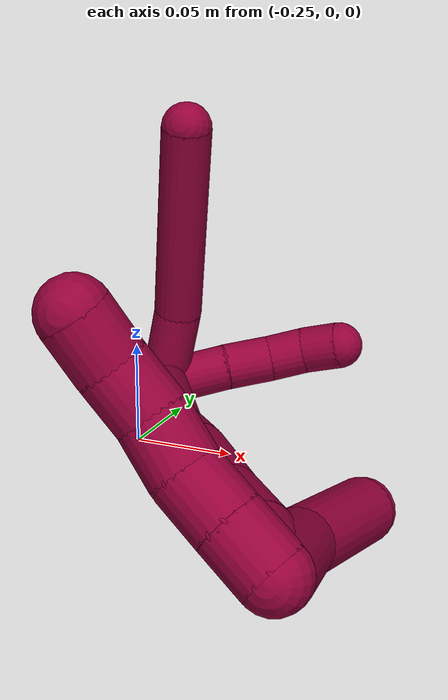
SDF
<sdf version="1.7">
 <world name="default">
  <model name="8">
   <static>0</static>
   <link name="8">
    <collision name="collision-cylinder-e_1_2_8">
     <pose>-0.001926 0.020821 0.0079 -1.20815 -0.086254 0.059547</pose>
     <geometry><cylinder><radius>0.0125</radius><length>0.044704</length></cylinder></geometry>
     <surface>
      <friction><ode><mu>1.16</mu><mu2>1.16</mu2><slip1>0</slip1><slip2>0</slip2></ode></friction>
      <contact><ode><kp>1e+06</kp><kd>1</kd><max_vel>0</max_vel><min_depth>0.001</min_depth></ode></contact>
     </surface>
    </collision>
    <visual name="visual-cylinder-e_1_2_8">
     <pose>-0.001926 0.020821 0.0079 -1.20815 -0.086254 0.059547</pose>
     <geometry><cylinder><radius>0.0125</radius><length>0.044704</length></cylinder></geometry>
     <material><ambient>0.584314 0 0.227451 1</ambient></material>
    </visual>
    <collision name="collision-cylinder-e_2_8_6">
     <pose>-0.012451 0.086892 0.041299 -1.05765 -0.164077 0.096019</pose>
     <geometry><cylinder><radius>0.0125</radius><length>0.105296</length></cylinder></geometry>
     <surface>
      <friction><ode><mu>1.16</mu><mu2>1.16</mu2><slip1>0</slip1><slip2>0</slip2></ode></friction>
      <contact><ode><kp>1e+06</kp><kd>1</kd><max_vel>0</max_vel><min_depth>0.001</min_depth></ode></contact>
     </surface>
    </collision>
    <visual name="visual-cylinder-e_2_8_6">
     <pose>-0.012451 0.086892 0.041299 -1.05765 -0.164077 0.096019</pose>
     <geometry><cylinder><radius>0.0125</radius><length>0.105296</length></cylinder></geometry>
     <material><ambient>0.584314 0 0.227451 1</ambient></material>
    </visual>
    <collision name="collision-cylinder-e_1_2_9">
     <pose>0.013409 0.010136 -0.005414 -2.06137 0.862256 -1.30881</pose>
     <geometry><cylinder><radius>0.0125</radius><length>0.03532</length></cylinder></geometry>
     <surface>
      <friction><ode><mu>1.16</mu><mu2>1.16</mu2><slip1>0</slip1><slip2>0</slip2></ode></friction>
      <contact><ode><kp>1e+06</kp><kd>1</kd><max_vel>0</max_vel><min_depth>0.001</min_depth></ode></contact>
     </surface>
    </collision>
    <visual name="visual-cylinder-e_1_2_9">
     <pose>0.013409 0.010136 -0.005414 -2.06137 0.862256 -1.30881</pose>
     <geometry><cylinder><radius>0.0125</radius><length>0.03532</length></cylinder></geometry>
     <material><ambient>0.584314 0 0.227451 1</ambient></material>
    </visual>
    <collision name="collision-cylinder-e_2_9_10">
     <pose>0.036364 0.026708 -0.015235 -2.17128 0.885713 -1.46523</pose>
     <geometry><cylinder><radius>0.0125</radius><length>0.024654</length></cylinder></geometry>
     <surface>
      <friction><ode><mu>1.16</mu><mu2>1.16</mu2><slip1>0</slip1><slip2>0</slip2></ode></friction>
      <contact><ode><kp>1e+06</kp><kd>1</kd><max_vel>0</max_vel><min_depth>0.001</min_depth></ode></contact>
     </surface>
    </collision>
    <visual name="visual-cylinder-e_2_9_10">
     <pose>0.036364 0.026708 -0.015235 -2.17128 0.885713 -1.46523</pose>
     <geometry><cylinder><radius>0.0125</radius><length>0.024654</length></cylinder></geometry>
     <material><ambient>0.584314 0 0.227451 1</ambient></material>
    </visual>
    <collision name="collision-cylinder-e_3_10_11">
     <pose>0.053798 0.039011 -0.021481 -1.87442 0.908685 -1.17351</pose>
     <geometry><cylinder><radius>0.0125</radius><length>0.020003</length></cylinder></geometry>
     <surface>
      <friction><ode><mu>1.16</mu><mu2>1.16</mu2><slip1>0</slip1><slip2>0</slip2></ode></friction>
      <contact><ode><kp>1e+06</kp><kd>1</kd><max_vel>0</max_vel><min_depth>0.001</min_depth></ode></contact>
     </surface>
    </collision>
    <visual name="visual-cylinder-e_3_10_11">
     <pose>0.053798 0.039011 -0.021481 -1.87442 0.908685 -1.17351</pose>
     <geometry><cylinder><radius>0.0125</radius><length>0.020003</length></cylinder></geometry>
     <material><ambient>0.584314 0 0.227451 1</ambient></material>
    </visual>
    <collision name="collision-cylinder-e_4_11_5">
     <pose>0.070119 0.050141 -0.022119 -1.34656 1.00144 -0.823117</pose>
     <geometry><cylinder><radius>0.0125</radius><length>0.020023</length></cylinder></geometry>
     <surface>
      <friction><ode><mu>1.16</mu><mu2>1.16</mu2><slip1>0</slip1><slip2>0</slip2></ode></friction>
      <contact><ode><kp>1e+06</kp><kd>1</kd><max_vel>0</max_vel><min_depth>0.001</min_depth></ode></contact>
     </surface>
    </collision>
    <visual name="visual-cylinder-e_4_11_5">
     <pose>0.070119 0.050141 -0.022119 -1.34656 1.00144 -0.823117</pose>
     <geometry><cylinder><radius>0.0125</radius><length>0.020023</length></cylinder></geometry>
     <material><ambient>0.584314 0 0.227451 1</ambient></material>
    </visual>
    <collision name="collision-cylinder-e_1_2_12">
     <pose>0.020731 0.003293 0.058264 -0.056454 0.341343 -0.009732</pose>
     <geometry><cylinder><radius>0.0125</radius><length>0.12386</length></cylinder></geometry>
     <surface>
      <friction><ode><mu>1.16</mu><mu2>1.16</mu2><slip1>0</slip1><slip2>0</slip2></ode></friction>
      <contact><ode><kp>1e+06</kp><kd>1</kd><max_vel>0</max_vel><min_depth>0.001</min_depth></ode></contact>
     </surface>
    </collision>
    <visual name="visual-cylinder-e_1_2_12">
     <pose>0.020731 0.003293 0.058264 -0.056454 0.341343 -0.009732</pose>
     <geometry><cylinder><radius>0.0125</radius><length>0.12386</length></cylinder></geometry>
     <material><ambient>0.584314 0 0.227451 1</ambient></material>
    </visual>
    <collision name="collision-cylinder-e_2_12_13">
     <pose>0.052738 0.010341 0.142619 -0.142941 0.404188 -0.029335</pose>
     <geometry><cylinder><radius>0.0125</radius><length>0.057341</length></cylinder></geometry>
     <surface>
      <friction><ode><mu>1.16</mu><mu2>1.16</mu2><slip1>0</slip1><slip2>0</slip2></ode></friction>
      <contact><ode><kp>1e+06</kp><kd>1</kd><max_vel>0</max_vel><min_depth>0.001</min_depth></ode></contact>
     </surface>
    </collision>
    <visual name="visual-cylinder-e_2_12_13">
     <pose>0.052738 0.010341 0.142619 -0.142941 0.404188 -0.029335</pose>
     <geometry><cylinder><radius>0.0125</radius><length>0.057341</length></cylinder></geometry>
     <material><ambient>0.584314 0 0.227451 1</ambient></material>
    </visual>
    <collision name="collision-cylinder-e_3_13_14">
     <pose>0.076552 0.015021 0.192136 -0.039471 0.491135 -0.009894</pose>
     <geometry><cylinder><radius>0.0125</radius><length>0.053172</length></cylinder></geometry>
     <surface>
      <friction><ode><mu>1.16</mu><mu2>1.16</mu2><slip1>0</slip1><slip2>0</slip2></ode></friction>
      <contact><ode><kp>1e+06</kp><kd>1</kd><max_vel>0</max_vel><min_depth>0.001</min_depth></ode></contact>
     </surface>
    </collision>
    <visual name="visual-cylinder-e_3_13_14">
     <pose>0.076552 0.015021 0.192136 -0.039471 0.491135 -0.009894</pose>
     <geometry><cylinder><radius>0.0125</radius><length>0.053172</length></cylinder></geometry>
     <material><ambient>0.584314 0 0.227451 1</ambient></material>
    </visual>
    <collision name="collision-cylinder-e_4_14_15">
     <pose>0.098438 0.016663 0.230684 -0.047379 0.55315 -0.013451</pose>
     <geometry><cylinder><radius>0.0125</radius><length>0.035587</length></cylinder></geometry>
     <surface>
      <friction><ode><mu>1.16</mu><mu2>1.16</mu2><slip1>0</slip1><slip2>0</slip2></ode></friction>
      <contact><ode><kp>1e+06</kp><kd>1</kd><max_vel>0</max_vel><min_depth>0.001</min_depth></ode></contact>
     </surface>
    </collision>
    <visual name="visual-cylinder-e_4_14_15">
     <pose>0.098438 0.016663 0.230684 -0.047379 0.55315 -0.013451</pose>
     <geometry><cylinder><radius>0.0125</radius><length>0.035587</length></cylinder></geometry>
     <material><ambient>0.584314 0 0.227451 1</ambient></material>
    </visual>
    <collision name="collision-cylinder-e_5_15_1">
     <pose>0.113425 0.017281 0.259729 0.007143 0.384803 0.001392</pose>
     <geometry><cylinder><radius>0.0125</radius><length>0.03004</length></cylinder></geometry>
     <surface>
      <friction><ode><mu>1.16</mu><mu2>1.16</mu2><slip1>0</slip1><slip2>0</slip2></ode></friction>
      <contact><ode><kp>1e+06</kp><kd>1</kd><max_vel>0</max_vel><min_depth>0.001</min_depth></ode></contact>
     </surface>
    </collision>
    <visual name="visual-cylinder-e_5_15_1">
     <pose>0.113425 0.017281 0.259729 0.007143 0.384803 0.001392</pose>
     <geometry><cylinder><radius>0.0125</radius><length>0.03004</length></cylinder></geometry>
     <material><ambient>0.584314 0 0.227451 1</ambient></material>
    </visual>
    <collision name="collision-cylinder-e_1_1_16">
     <pose>0.10983 0.020866 0.272566 -1.85702 -1.1766 1.45644</pose>
     <geometry><cylinder><radius>0.0125</radius><length>0.02</length></cylinder></geometry>
     <surface>
      <friction><ode><mu>1.16</mu><mu2>1.16</mu2><slip1>0</slip1><slip2>0</slip2></ode></friction>
      <contact><ode><kp>1e+06</kp><kd>1</kd><max_vel>0</max_vel><min_depth>0.001</min_depth></ode></contact>
     </surface>
    </collision>
    <visual name="visual-cylinder-e_1_1_16">
     <pose>0.10983 0.020866 0.272566 -1.85702 -1.1766 1.45644</pose>
     <geometry><cylinder><radius>0.0125</radius><length>0.02</length></cylinder></geometry>
     <material><ambient>0.584314 0 0.227451 1</ambient></material>
    </visual>
    <collision name="collision-cylinder-e_2_16_17">
     <pose>0.09141 0.0283 0.270245 -1.88937 -1.16486 1.47747</pose>
     <geometry><cylinder><radius>0.0125</radius><length>0.02</length></cylinder></geometry>
     <surface>
      <friction><ode><mu>1.16</mu><mu2>1.16</mu2><slip1>0</slip1><slip2>0</slip2></ode></friction>
      <contact><ode><kp>1e+06</kp><kd>1</kd><max_vel>0</max_vel><min_depth>0.001</min_depth></ode></contact>
     </surface>
    </collision>
    <visual name="visual-cylinder-e_2_16_17">
     <pose>0.09141 0.0283 0.270245 -1.88937 -1.16486 1.47747</pose>
     <geometry><cylinder><radius>0.0125</radius><length>0.02</length></cylinder></geometry>
     <material><ambient>0.584314 0 0.227451 1</ambient></material>
    </visual>
    <collision name="collision-cylinder-e_3_17_18">
     <pose>0.073989 0.037715 0.268652 -1.63344 -0.967177 1.01969</pose>
     <geometry><cylinder><radius>0.0125</radius><length>0.02</length></cylinder></geometry>
     <surface>
      <friction><ode><mu>1.16</mu><mu2>1.16</mu2><slip1>0</slip1><slip2>0</slip2></ode></friction>
      <contact><ode><kp>1e+06</kp><kd>1</kd><max_vel>0</max_vel><min_depth>0.001</min_depth></ode></contact>
     </surface>
    </collision>
    <visual name="visual-cylinder-e_3_17_18">
     <pose>0.073989 0.037715 0.268652 -1.63344 -0.967177 1.01969</pose>
     <geometry><cylinder><radius>0.0125</radius><length>0.02</length></cylinder></geometry>
     <material><ambient>0.584314 0 0.227451 1</ambient></material>
    </visual>
    <collision name="collision-cylinder-e_4_18_19">
     <pose>0.057243 0.048297 0.270128 -1.21434 -1.01856 0.740128</pose>
     <geometry><cylinder><radius>0.0125</radius><length>0.02</length></cylinder></geometry>
     <surface>
      <friction><ode><mu>1.16</mu><mu2>1.16</mu2><slip1>0</slip1><slip2>0</slip2></ode></friction>
      <contact><ode><kp>1e+06</kp><kd>1</kd><max_vel>0</max_vel><min_depth>0.001</min_depth></ode></contact>
     </surface>
    </collision>
    <visual name="visual-cylinder-e_4_18_19">
     <pose>0.057243 0.048297 0.270128 -1.21434 -1.01856 0.740128</pose>
     <geometry><cylinder><radius>0.0125</radius><length>0.02</length></cylinder></geometry>
     <material><ambient>0.584314 0 0.227451 1</ambient></material>
    </visual>
    <collision name="collision-cylinder-e_5_19_4">
     <pose>0.041285 0.058833 0.275564 -1.0004 -0.839651 0.478584</pose>
     <geometry><cylinder><radius>0.0125</radius><length>0.02</length></cylinder></geometry>
     <surface>
      <friction><ode><mu>1.16</mu><mu2>1.16</mu2><slip1>0</slip1><slip2>0</slip2></ode></friction>
      <contact><ode><kp>1e+06</kp><kd>1</kd><max_vel>0</max_vel><min_depth>0.001</min_depth></ode></contact>
     </surface>
    </collision>
    <visual name="visual-cylinder-e_5_19_4">
     <pose>0.041285 0.058833 0.275564 -1.0004 -0.839651 0.478584</pose>
     <geometry><cylinder><radius>0.0125</radius><length>0.02</length></cylinder></geometry>
     <material><ambient>0.584314 0 0.227451 1</ambient></material>
    </visual>
    <collision name="collision-cylinder-e_1_1_20">
     <pose>0.118904 0.016284 0.250056 3.10358 -0.006738 -0.350826</pose>
     <geometry><cylinder><radius>0.0125</radius><length>0.047223</length></cylinder></geometry>
     <surface>
      <friction><ode><mu>1.16</mu><mu2>1.16</mu2><slip1>0</slip1><slip2>0</slip2></ode></friction>
      <contact><ode><kp>1e+06</kp><kd>1</kd><max_vel>0</max_vel><min_depth>0.001</min_depth></ode></contact>
     </surface>
    </collision>
    <visual name="visual-cylinder-e_1_1_20">
     <pose>0.118904 0.016284 0.250056 3.10358 -0.006738 -0.350826</pose>
     <geometry><cylinder><radius>0.0125</radius><length>0.047223</length></cylinder></geometry>
     <material><ambient>0.584314 0 0.227451 1</ambient></material>
    </visual>
    <collision name="collision-cylinder-e_2_20_3">
     <pose>0.125153 0.01925 0.201157 -2.99009 0.245295 -2.0378</pose>
     <geometry><cylinder><radius>0.0125</radius><length>0.052777</length></cylinder></geometry>
     <surface>
      <friction><ode><mu>1.16</mu><mu2>1.16</mu2><slip1>0</slip1><slip2>0</slip2></ode></friction>
      <contact><ode><kp>1e+06</kp><kd>1</kd><max_vel>0</max_vel><min_depth>0.001</min_depth></ode></contact>
     </surface>
    </collision>
    <visual name="visual-cylinder-e_2_20_3">
     <pose>0.125153 0.01925 0.201157 -2.99009 0.245295 -2.0378</pose>
     <geometry><cylinder><radius>0.0125</radius><length>0.052777</length></cylinder></geometry>
     <material><ambient>0.584314 0 0.227451 1</ambient></material>
    </visual>
    <collision name="collision-sphere-3">
     <pose>0.131562 0.023114 0.175852 0 -0 0</pose>
     <geometry><sphere><radius>0.0125</radius></sphere></geometry>
     <surface>
      <friction><ode><mu>1.16</mu><mu2>1.16</mu2><slip1>0</slip1><slip2>0</slip2></ode></friction>
      <contact><ode><kp>1e+06</kp><kd>1</kd><max_vel>0</max_vel><min_depth>0.001</min_depth></ode></contact>
     </surface>
    </collision>
    <visual name="visual-sphere-3">
     <pose>0.131562 0.023114 0.175852 0 -0 0</pose>
     <geometry><sphere><radius>0.0125</radius></sphere></geometry>
     <material><ambient>0.584314 0 0.227451 1</ambient></material>
    </visual>
    <collision name="collision-sphere-20">
     <pose>0.118745 0.015387 0.226463 0 -0 0</pose>
     <geometry><sphere><radius>0.0125</radius></sphere></geometry>
     <surface>
      <friction><ode><mu>1.16</mu><mu2>1.16</mu2><slip1>0</slip1><slip2>0</slip2></ode></friction>
      <contact><ode><kp>1e+06</kp><kd>1</kd><max_vel>0</max_vel><min_depth>0.001</min_depth></ode></contact>
     </surface>
    </collision>
    <visual name="visual-sphere-20">
     <pose>0.118745 0.015387 0.226463 0 -0 0</pose>
     <geometry><sphere><radius>0.0125</radius></sphere></geometry>
     <material><ambient>0.584314 0 0.227451 1</ambient></material>
    </visual>
    <collision name="collision-sphere-4">
     <pose>0.033841 0.064453 0.279169 0 -0 0</pose>
     <geometry><sphere><radius>0.0125</radius></sphere></geometry>
     <surface>
      <friction><ode><mu>1.16</mu><mu2>1.16</mu2><slip1>0</slip1><slip2>0</slip2></ode></friction>
      <contact><ode><kp>1e+06</kp><kd>1</kd><max_vel>0</max_vel><min_depth>0.001</min_depth></ode></contact>
     </surface>
    </collision>
    <visual name="visual-sphere-4">
     <pose>0.033841 0.064453 0.279169 0 -0 0</pose>
     <geometry><sphere><radius>0.0125</radius></sphere></geometry>
     <material><ambient>0.584314 0 0.227451 1</ambient></material>
    </visual>
    <collision name="collision-sphere-11">
     <pose>0.061687 0.044879 -0.023319 0 -0 0</pose>
     <geometry><sphere><radius>0.0125</radius></sphere></geometry>
     <surface>
      <friction><ode><mu>1.16</mu><mu2>1.16</mu2><slip1>0</slip1><slip2>0</slip2></ode></friction>
      <contact><ode><kp>1e+06</kp><kd>1</kd><max_vel>0</max_vel><min_depth>0.001</min_depth></ode></contact>
     </surface>
    </collision>
    <visual name="visual-sphere-11">
     <pose>0.061687 0.044879 -0.023319 0 -0 0</pose>
     <geometry><sphere><radius>0.0125</radius></sphere></geometry>
     <material><ambient>0.584314 0 0.227451 1</ambient></material>
    </visual>
    <collision name="collision-sphere-10">
     <pose>0.04591 0.033144 -0.019643 0 -0 0</pose>
     <geometry><sphere><radius>0.0125</radius></sphere></geometry>
     <surface>
      <friction><ode><mu>1.16</mu><mu2>1.16</mu2><slip1>0</slip1><slip2>0</slip2></ode></friction>
      <contact><ode><kp>1e+06</kp><kd>1</kd><max_vel>0</max_vel><min_depth>0.001</min_depth></ode></contact>
     </surface>
    </collision>
    <visual name="visual-sphere-10">
     <pose>0.04591 0.033144 -0.019643 0 -0 0</pose>
     <geometry><sphere><radius>0.0125</radius></sphere></geometry>
     <material><ambient>0.584314 0 0.227451 1</ambient></material>
    </visual>
    <collision name="collision-sphere-6">
     <pose>-0.02105 0.132144 0.066797 0 -0 0</pose>
     <geometry><sphere><radius>0.0125</radius></sphere></geometry>
     <surface>
      <friction><ode><mu>1.16</mu><mu2>1.16</mu2><slip1>0</slip1><slip2>0</slip2></ode></friction>
      <contact><ode><kp>1e+06</kp><kd>1</kd><max_vel>0</max_vel><min_depth>0.001</min_depth></ode></contact>
     </surface>
    </collision>
    <visual name="visual-sphere-6">
     <pose>-0.02105 0.132144 0.066797 0 -0 0</pose>
     <geometry><sphere><radius>0.0125</radius></sphere></geometry>
     <material><ambient>0.584314 0 0.227451 1</ambient></material>
    </visual>
    <collision name="collision-sphere-9">
     <pose>0.026819 0.020273 -0.010828 0 -0 0</pose>
     <geometry><sphere><radius>0.0125</radius></sphere></geometry>
     <surface>
      <friction><ode><mu>1.16</mu><mu2>1.16</mu2><slip1>0</slip1><slip2>0</slip2></ode></friction>
      <contact><ode><kp>1e+06</kp><kd>1</kd><max_vel>0</max_vel><min_depth>0.001</min_depth></ode></contact>
     </surface>
    </collision>
    <visual name="visual-sphere-9">
     <pose>0.026819 0.020273 -0.010828 0 -0 0</pose>
     <geometry><sphere><radius>0.0125</radius></sphere></geometry>
     <material><ambient>0.584314 0 0.227451 1</ambient></material>
    </visual>
    <collision name="collision-sphere-2">
     <geometry><sphere><radius>0.0125</radius></sphere></geometry>
     <surface>
      <friction><ode><mu>1.16</mu><mu2>1.16</mu2><slip1>0</slip1><slip2>0</slip2></ode></friction>
      <contact><ode><kp>1e+06</kp><kd>1</kd><max_vel>0</max_vel><min_depth>0.001</min_depth></ode></contact>
     </surface>
    </collision>
    <visual name="visual-sphere-2">
     <geometry><sphere><radius>0.0125</radius></sphere></geometry>
     <material><ambient>0.584314 0 0.227451 1</ambient></material>
    </visual>
    <collision name="collision-sphere-19">
     <pose>0.04873 0.053213 0.271958 0 -0 0</pose>
     <geometry><sphere><radius>0.0125</radius></sphere></geometry>
     <surface>
      <friction><ode><mu>1.16</mu><mu2>1.16</mu2><slip1>0</slip1><slip2>0</slip2></ode></friction>
      <contact><ode><kp>1e+06</kp><kd>1</kd><max_vel>0</max_vel><min_depth>0.001</min_depth></ode></contact>
     </surface>
    </collision>
    <visual name="visual-sphere-19">
     <pose>0.04873 0.053213 0.271958 0 -0 0</pose>
     <geometry><sphere><radius>0.0125</radius></sphere></geometry>
     <material><ambient>0.584314 0 0.227451 1</ambient></material>
    </visual>
    <collision name="collision-sphere-8">
     <pose>-0.003851 0.041641 0.0158 0 -0 0</pose>
     <geometry><sphere><radius>0.0125</radius></sphere></geometry>
     <surface>
      <friction><ode><mu>1.16</mu><mu2>1.16</mu2><slip1>0</slip1><slip2>0</slip2></ode></friction>
      <contact><ode><kp>1e+06</kp><kd>1</kd><max_vel>0</max_vel><min_depth>0.001</min_depth></ode></contact>
     </surface>
    </collision>
    <visual name="visual-sphere-8">
     <pose>-0.003851 0.041641 0.0158 0 -0 0</pose>
     <geometry><sphere><radius>0.0125</radius></sphere></geometry>
     <material><ambient>0.584314 0 0.227451 1</ambient></material>
    </visual>
    <collision name="collision-sphere-5">
     <pose>0.078551 0.055403 -0.020919 0 -0 0</pose>
     <geometry><sphere><radius>0.0125</radius></sphere></geometry>
     <surface>
      <friction><ode><mu>1.16</mu><mu2>1.16</mu2><slip1>0</slip1><slip2>0</slip2></ode></friction>
      <contact><ode><kp>1e+06</kp><kd>1</kd><max_vel>0</max_vel><min_depth>0.001</min_depth></ode></contact>
     </surface>
    </collision>
    <visual name="visual-sphere-5">
     <pose>0.078551 0.055403 -0.020919 0 -0 0</pose>
     <geometry><sphere><radius>0.0125</radius></sphere></geometry>
     <material><ambient>0.584314 0 0.227451 1</ambient></material>
    </visual>
    <collision name="collision-sphere-12">
     <pose>0.041463 0.006586 0.116528 0 -0 0</pose>
     <geometry><sphere><radius>0.0125</radius></sphere></geometry>
     <surface>
      <friction><ode><mu>1.16</mu><mu2>1.16</mu2><slip1>0</slip1><slip2>0</slip2></ode></friction>
      <contact><ode><kp>1e+06</kp><kd>1</kd><max_vel>0</max_vel><min_depth>0.001</min_depth></ode></contact>
     </surface>
    </collision>
    <visual name="visual-sphere-12">
     <pose>0.041463 0.006586 0.116528 0 -0 0</pose>
     <geometry><sphere><radius>0.0125</radius></sphere></geometry>
     <material><ambient>0.584314 0 0.227451 1</ambient></material>
    </visual>
    <collision name="collision-sphere-13">
     <pose>0.064013 0.014096 0.168711 0 -0 0</pose>
     <geometry><sphere><radius>0.0125</radius></sphere></geometry>
     <surface>
      <friction><ode><mu>1.16</mu><mu2>1.16</mu2><slip1>0</slip1><slip2>0</slip2></ode></friction>
      <contact><ode><kp>1e+06</kp><kd>1</kd><max_vel>0</max_vel><min_depth>0.001</min_depth></ode></contact>
     </surface>
    </collision>
    <visual name="visual-sphere-13">
     <pose>0.064013 0.014096 0.168711 0 -0 0</pose>
     <geometry><sphere><radius>0.0125</radius></sphere></geometry>
     <material><ambient>0.584314 0 0.227451 1</ambient></material>
    </visual>
    <collision name="collision-sphere-14">
     <pose>0.08909 0.015946 0.215561 0 -0 0</pose>
     <geometry><sphere><radius>0.0125</radius></sphere></geometry>
     <surface>
      <friction><ode><mu>1.16</mu><mu2>1.16</mu2><slip1>0</slip1><slip2>0</slip2></ode></friction>
      <contact><ode><kp>1e+06</kp><kd>1</kd><max_vel>0</max_vel><min_depth>0.001</min_depth></ode></contact>
     </surface>
    </collision>
    <visual name="visual-sphere-14">
     <pose>0.08909 0.015946 0.215561 0 -0 0</pose>
     <geometry><sphere><radius>0.0125</radius></sphere></geometry>
     <material><ambient>0.584314 0 0.227451 1</ambient></material>
    </visual>
    <collision name="collision-sphere-15">
     <pose>0.107787 0.01738 0.245807 0 -0 0</pose>
     <geometry><sphere><radius>0.0125</radius></sphere></geometry>
     <surface>
      <friction><ode><mu>1.16</mu><mu2>1.16</mu2><slip1>0</slip1><slip2>0</slip2></ode></friction>
      <contact><ode><kp>1e+06</kp><kd>1</kd><max_vel>0</max_vel><min_depth>0.001</min_depth></ode></contact>
     </surface>
    </collision>
    <visual name="visual-sphere-15">
     <pose>0.107787 0.01738 0.245807 0 -0 0</pose>
     <geometry><sphere><radius>0.0125</radius></sphere></geometry>
     <material><ambient>0.584314 0 0.227451 1</ambient></material>
    </visual>
    <collision name="collision-sphere-1">
     <pose>0.119063 0.017181 0.27365 0 -0 0</pose>
     <geometry><sphere><radius>0.0125</radius></sphere></geometry>
     <surface>
      <friction><ode><mu>1.16</mu><mu2>1.16</mu2><slip1>0</slip1><slip2>0</slip2></ode></friction>
      <contact><ode><kp>1e+06</kp><kd>1</kd><max_vel>0</max_vel><min_depth>0.001</min_depth></ode></contact>
     </surface>
    </collision>
    <visual name="visual-sphere-1">
     <pose>0.119063 0.017181 0.27365 0 -0 0</pose>
     <geometry><sphere><radius>0.0125</radius></sphere></geometry>
     <material><ambient>0.584314 0 0.227451 1</ambient></material>
    </visual>
    <collision name="collision-sphere-18">
     <pose>0.065757 0.04338 0.268297 0 -0 0</pose>
     <geometry><sphere><radius>0.0125</radius></sphere></geometry>
     <surface>
      <friction><ode><mu>1.16</mu><mu2>1.16</mu2><slip1>0</slip1><slip2>0</slip2></ode></friction>
      <contact><ode><kp>1e+06</kp><kd>1</kd><max_vel>0</max_vel><min_depth>0.001</min_depth></ode></contact>
     </surface>
    </collision>
    <visual name="visual-sphere-18">
     <pose>0.065757 0.04338 0.268297 0 -0 0</pose>
     <geometry><sphere><radius>0.0125</radius></sphere></geometry>
     <material><ambient>0.584314 0 0.227451 1</ambient></material>
    </visual>
    <collision name="collision-sphere-16">
     <pose>0.100597 0.02455 0.271481 0 -0 0</pose>
     <geometry><sphere><radius>0.0125</radius></sphere></geometry>
     <surface>
      <friction><ode><mu>1.16</mu><mu2>1.16</mu2><slip1>0</slip1><slip2>0</slip2></ode></friction>
      <contact><ode><kp>1e+06</kp><kd>1</kd><max_vel>0</max_vel><min_depth>0.001</min_depth></ode></contact>
     </surface>
    </collision>
    <visual name="visual-sphere-16">
     <pose>0.100597 0.02455 0.271481 0 -0 0</pose>
     <geometry><sphere><radius>0.0125</radius></sphere></geometry>
     <material><ambient>0.584314 0 0.227451 1</ambient></material>
    </visual>
    <collision name="collision-sphere-17">
     <pose>0.082222 0.03205 0.269008 0 -0 0</pose>
     <geometry><sphere><radius>0.0125</radius></sphere></geometry>
     <surface>
      <friction><ode><mu>1.16</mu><mu2>1.16</mu2><slip1>0</slip1><slip2>0</slip2></ode></friction>
      <contact><ode><kp>1e+06</kp><kd>1</kd><max_vel>0</max_vel><min_depth>0.001</min_depth></ode></contact>
     </surface>
    </collision>
    <visual name="visual-sphere-17">
     <pose>0.082222 0.03205 0.269008 0 -0 0</pose>
     <geometry><sphere><radius>0.0125</radius></sphere></geometry>
     <material><ambient>0.584314 0 0.227451 1</ambient></material>
    </visual>
    <inertial>
     <pose>0.051628 0.02861 0.125937 0 -0 0</pose>
     <mass>0.75</mass>
     <inertia>
      <ixx>0.000304</ixx>
      <ixy>0</ixy>
      <ixz>0</ixz>
      <iyy>0.000275</iyy>
      <iyz>0</iyz>
      <izz>-0.000161</izz>
     </inertia>
    </inertial>
   </link>
   <pose>-0.261384 0.053037 0.012403 1.32726 0.329052 0.074439</pose>
  </model>
 </world>
</sdf>
